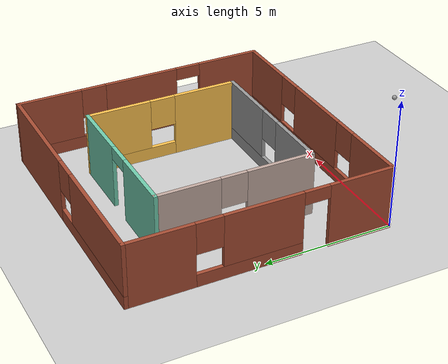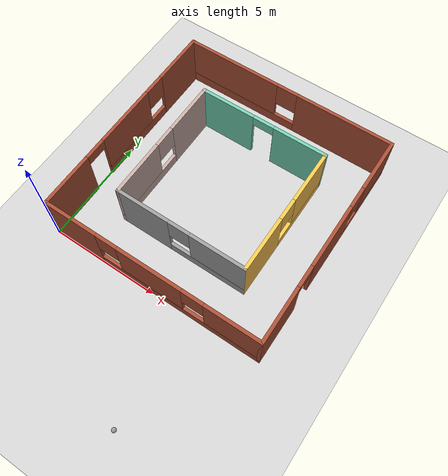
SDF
<sdf version="1.6">
 <world name="default">
  <plugin name="project_gazebo" filename="libproject_gazebo.so"/>
  <light name="sun" type="directional">
   <pose>0 0 10 0 -0 0</pose>
   <diffuse>0.8 0.8 0.8 1</diffuse>
   <specular>0.2 0.2 0.2 1</specular>
   <attenuation>
    <range>1000</range>
    <constant>0.9</constant>
    <linear>0.01</linear>
    <quadratic>0.001</quadratic>
   </attenuation>
   <direction>-0.5 0.1 -0.9</direction>
  </light>
  <model name="ground_plane">
   <static>1</static>
   <link name="link">
    <collision name="collision">
     <geometry><plane><normal>0 0 1</normal><size>100 100</size></plane></geometry>
     <surface>
      <contact><collide_bitmask>65535</collide_bitmask></contact>
      <friction><ode><mu>100</mu><mu2>50</mu2></ode></friction>
     </surface>
    </collision>
    <visual name="visual">
     <cast_shadows>0</cast_shadows>
     <geometry><plane><normal>0 0 1</normal><size>100 100</size></plane></geometry>
     <material>
      <script><uri>file://media/materials/scripts/gazebo.material</uri><name>Gazebo/Grey</name></script>
     </material>
    </visual>
   </link>
  </model>
  <gravity>0 0 -9.8</gravity>
  <magnetic_field>6e-06 2.3e-05 -4.2e-05</magnetic_field>
  <atmosphere type="adiabatic"/>
  <physics name="default_physics" default="0" type="ode">
   <max_step_size>0.001</max_step_size>
   <real_time_factor>1</real_time_factor>
   <real_time_update_rate>1000</real_time_update_rate>
  </physics>
  <scene><ambient>0.4 0.4 0.4 1</ambient><background>0.7 0.7 0.7 1</background><shadows>1</shadows></scene>
  <audio><device>default</device></audio>
  <spherical_coordinates>
   <surface_model>EARTH_WGS84</surface_model>
   <latitude_deg>0</latitude_deg>
   <longitude_deg>0</longitude_deg>
   <elevation>0</elevation>
   <heading_deg>0</heading_deg>
  </spherical_coordinates>
  <model name="project_gazebo_wall">
   <pose>4.98744 5.10563 0 0 -0 0</pose>
   <link name="Wall_1">
    <pose>5 -0 0 0 -0 1.5708</pose>
    <visual name="Wall_1_Visual_0">
     <pose>-3.7875 0 1.25 0 -0 0</pose>
     <geometry><box><size>2.575 0.15 2.5</size></box></geometry>
     <material>
      <script><uri>file://media/materials/scripts/gazebo.material</uri><name>Gazebo/Bricks</name></script>
      <ambient>1 1 1 1</ambient>
     </material>
     <meta><layer>0</layer></meta>
    </visual>
    <collision name="Wall_1_Collision_0">
     <geometry><box><size>2.575 0.15 2.5</size></box></geometry>
     <pose>-3.7875 0 1.25 0 -0 0</pose>
    </collision>
    <visual name="Wall_1_Visual_1">
     <pose>0 0 1.25 0 -0 0</pose>
     <geometry><box><size>3 0.15 2.5</size></box></geometry>
     <material>
      <script><uri>file://media/materials/scripts/gazebo.material</uri><name>Gazebo/Bricks</name></script>
      <ambient>1 1 1 1</ambient>
     </material>
     <meta><layer>0</layer></meta>
    </visual>
    <collision name="Wall_1_Collision_1">
     <geometry><box><size>3 0.15 2.5</size></box></geometry>
     <pose>0 0 1.25 0 -0 0</pose>
    </collision>
    <visual name="Wall_1_Visual_2">
     <pose>3.2875 0 0.25 0 -0 0</pose>
     <geometry><box><size>3.575 0.15 0.5</size></box></geometry>
     <material>
      <script><uri>file://media/materials/scripts/gazebo.material</uri><name>Gazebo/Bricks</name></script>
      <ambient>1 1 1 1</ambient>
     </material>
     <meta><layer>0</layer></meta>
    </visual>
    <collision name="Wall_1_Collision_2">
     <geometry><box><size>3.575 0.15 0.5</size></box></geometry>
     <pose>3.2875 0 0.25 0 -0 0</pose>
    </collision>
    <visual name="Wall_1_Visual_3">
     <pose>3.7875 0 1.5 0 -0 0</pose>
     <geometry><box><size>2.575 0.15 2</size></box></geometry>
     <material>
      <script><uri>file://media/materials/scripts/gazebo.material</uri><name>Gazebo/Bricks</name></script>
      <ambient>1 1 1 1</ambient>
     </material>
     <meta><layer>0</layer></meta>
    </visual>
    <collision name="Wall_1_Collision_3">
     <geometry><box><size>2.575 0.15 2</size></box></geometry>
     <pose>3.7875 0 1.5 0 -0 0</pose>
    </collision>
    <visual name="Wall_1_Visual_4">
     <pose>2 0 1.9 0 -0 0</pose>
     <geometry><box><size>1 0.15 1.2</size></box></geometry>
     <material>
      <script><uri>file://media/materials/scripts/gazebo.material</uri><name>Gazebo/Bricks</name></script>
      <ambient>1 1 1 1</ambient>
     </material>
     <meta><layer>0</layer></meta>
    </visual>
    <collision name="Wall_1_Collision_4">
     <geometry><box><size>1 0.15 1.2</size></box></geometry>
     <pose>2 0 1.9 0 -0 0</pose>
    </collision>
    <visual name="Wall_1_Visual_5">
     <pose>-2 0 2.25 0 -0 0</pose>
     <geometry><box><size>1 0.15 0.5</size></box></geometry>
     <material>
      <script><uri>file://media/materials/scripts/gazebo.material</uri><name>Gazebo/Bricks</name></script>
      <ambient>1 1 1 1</ambient>
     </material>
     <meta><layer>0</layer></meta>
    </visual>
    <collision name="Wall_1_Collision_5">
     <geometry><box><size>1 0.15 0.5</size></box></geometry>
     <pose>-2 0 2.25 0 -0 0</pose>
    </collision>
   </link>
   <link name="Wall_10">
    <pose>-0 -3 0 0 -0 0</pose>
    <visual name="Wall_10_Visual_0">
     <pose>-1.80742 0 1.25 0 -0 0</pose>
     <geometry><box><size>2.53517 0.15 2.5</size></box></geometry>
     <material>
      <script><uri>file://media/materials/scripts/gazebo.material</uri><name>Gazebo/Grey</name></script>
      <ambient>1 1 1 1</ambient>
     </material>
     <meta><layer>0</layer></meta>
    </visual>
    <collision name="Wall_10_Collision_0">
     <geometry><box><size>2.53517 0.15 2.5</size></box></geometry>
     <pose>-1.80742 0 1.25 0 -0 0</pose>
    </collision>
    <visual name="Wall_10_Visual_1">
     <pose>1.26758 0 0.25 0 -0 0</pose>
     <geometry><box><size>3.61483 0.15 0.5</size></box></geometry>
     <material>
      <script><uri>file://media/materials/scripts/gazebo.material</uri><name>Gazebo/Grey</name></script>
      <ambient>1 1 1 1</ambient>
     </material>
     <meta><layer>0</layer></meta>
    </visual>
    <collision name="Wall_10_Collision_1">
     <geometry><box><size>3.61483 0.15 0.5</size></box></geometry>
     <pose>1.26758 0 0.25 0 -0 0</pose>
    </collision>
    <visual name="Wall_10_Visual_2">
     <pose>1.76758 0 1.5 0 -0 0</pose>
     <geometry><box><size>2.61483 0.15 2</size></box></geometry>
     <material>
      <script><uri>file://media/materials/scripts/gazebo.material</uri><name>Gazebo/Grey</name></script>
      <ambient>1 1 1 1</ambient>
     </material>
     <meta><layer>0</layer></meta>
    </visual>
    <collision name="Wall_10_Collision_2">
     <geometry><box><size>2.61483 0.15 2</size></box></geometry>
     <pose>1.76758 0 1.5 0 -0 0</pose>
    </collision>
    <visual name="Wall_10_Visual_3">
     <pose>-0.039832 0 1.9 0 -0 0</pose>
     <geometry><box><size>1 0.15 1.2</size></box></geometry>
     <material>
      <script><uri>file://media/materials/scripts/gazebo.material</uri><name>Gazebo/Grey</name></script>
      <ambient>1 1 1 1</ambient>
     </material>
     <meta><layer>0</layer></meta>
    </visual>
    <collision name="Wall_10_Collision_3">
     <geometry><box><size>1 0.15 1.2</size></box></geometry>
     <pose>-0.039832 0 1.9 0 -0 0</pose>
    </collision>
   </link>
   <link name="Wall_11">
    <pose>3 -0 0 0 -0 1.5708</pose>
    <visual name="Wall_11_Visual_0">
     <pose>-1.78192 0 1.25 0 -0 0</pose>
     <geometry><box><size>2.58615 0.15 2.5</size></box></geometry>
     <material>
      <script><uri>file://media/materials/scripts/gazebo.material</uri><name>Gazebo/Grey</name></script>
      <ambient>1 0.764706 0.305882 1</ambient>
     </material>
     <meta><layer>0</layer></meta>
    </visual>
    <collision name="Wall_11_Collision_0">
     <geometry><box><size>2.58615 0.15 2.5</size></box></geometry>
     <pose>-1.78192 0 1.25 0 -0 0</pose>
    </collision>
    <visual name="Wall_11_Visual_1">
     <pose>1.29308 0 0.25 0 -0 0</pose>
     <geometry><box><size>3.56385 0.15 0.5</size></box></geometry>
     <material>
      <script><uri>file://media/materials/scripts/gazebo.material</uri><name>Gazebo/Grey</name></script>
      <ambient>1 0.764706 0.305882 1</ambient>
     </material>
     <meta><layer>0</layer></meta>
    </visual>
    <collision name="Wall_11_Collision_1">
     <geometry><box><size>3.56385 0.15 0.5</size></box></geometry>
     <pose>1.29308 0 0.25 0 -0 0</pose>
    </collision>
    <visual name="Wall_11_Visual_2">
     <pose>1.79308 0 1.5 0 -0 0</pose>
     <geometry><box><size>2.56385 0.15 2</size></box></geometry>
     <material>
      <script><uri>file://media/materials/scripts/gazebo.material</uri><name>Gazebo/Grey</name></script>
      <ambient>1 0.764706 0.305882 1</ambient>
     </material>
     <meta><layer>0</layer></meta>
    </visual>
    <collision name="Wall_11_Collision_2">
     <geometry><box><size>2.56385 0.15 2</size></box></geometry>
     <pose>1.79308 0 1.5 0 -0 0</pose>
    </collision>
    <visual name="Wall_11_Visual_3">
     <pose>0.011152 0 1.9 0 -0 0</pose>
     <geometry><box><size>1 0.15 1.2</size></box></geometry>
     <material>
      <script><uri>file://media/materials/scripts/gazebo.material</uri><name>Gazebo/Grey</name></script>
      <ambient>1 0.764706 0.305882 1</ambient>
     </material>
     <meta><layer>0</layer></meta>
    </visual>
    <collision name="Wall_11_Collision_3">
     <geometry><box><size>1 0.15 1.2</size></box></geometry>
     <pose>0.011152 0 1.9 0 -0 0</pose>
    </collision>
   </link>
   <link name="Wall_12">
    <pose>-0 3 0 0 -0 3.14159</pose>
    <visual name="Wall_12_Visual_0">
     <pose>-1.80804 0 1.25 0 -0 0</pose>
     <geometry><box><size>2.53392 0.15 2.5</size></box></geometry>
     <material>
      <script><uri>file://media/materials/scripts/gazebo.material</uri><name>Gazebo/Grey</name></script>
      <ambient>0.435294 0.796078 0.67451 1</ambient>
     </material>
     <meta><layer>0</layer></meta>
    </visual>
    <collision name="Wall_12_Collision_0">
     <geometry><box><size>2.53392 0.15 2.5</size></box></geometry>
     <pose>-1.80804 0 1.25 0 -0 0</pose>
    </collision>
    <visual name="Wall_12_Visual_1">
     <pose>1.76696 0 1.25 0 -0 0</pose>
     <geometry><box><size>2.61608 0.15 2.5</size></box></geometry>
     <material>
      <script><uri>file://media/materials/scripts/gazebo.material</uri><name>Gazebo/Grey</name></script>
      <ambient>0.435294 0.796078 0.67451 1</ambient>
     </material>
     <meta><layer>0</layer></meta>
    </visual>
    <collision name="Wall_12_Collision_1">
     <geometry><box><size>2.61608 0.15 2.5</size></box></geometry>
     <pose>1.76696 0 1.25 0 -0 0</pose>
    </collision>
    <visual name="Wall_12_Visual_2">
     <pose>-0.041079 0 2.25 0 -0 0</pose>
     <geometry><box><size>1 0.15 0.5</size></box></geometry>
     <material>
      <script><uri>file://media/materials/scripts/gazebo.material</uri><name>Gazebo/Grey</name></script>
      <ambient>0.435294 0.796078 0.67451 1</ambient>
     </material>
     <meta><layer>0</layer></meta>
    </visual>
    <collision name="Wall_12_Collision_2">
     <geometry><box><size>1 0.15 0.5</size></box></geometry>
     <pose>-0.041079 0 2.25 0 -0 0</pose>
    </collision>
   </link>
   <link name="Wall_2">
    <pose>-0 5 0 0 -0 3.14159</pose>
    <visual name="Wall_2_Visual_0">
     <pose>-2.7875 0 1.25 0 -0 0</pose>
     <geometry><box><size>4.575 0.15 2.5</size></box></geometry>
     <material>
      <script><uri>file://media/materials/scripts/gazebo.material</uri><name>Gazebo/Bricks</name></script>
      <ambient>1 1 1 1</ambient>
     </material>
     <meta><layer>0</layer></meta>
    </visual>
    <collision name="Wall_2_Collision_0">
     <geometry><box><size>4.575 0.15 2.5</size></box></geometry>
     <pose>-2.7875 0 1.25 0 -0 0</pose>
    </collision>
    <visual name="Wall_2_Visual_1">
     <pose>2.2875 0 0.25 0 -0 0</pose>
     <geometry><box><size>5.575 0.15 0.5</size></box></geometry>
     <material>
      <script><uri>file://media/materials/scripts/gazebo.material</uri><name>Gazebo/Bricks</name></script>
      <ambient>1 1 1 1</ambient>
     </material>
     <meta><layer>0</layer></meta>
    </visual>
    <collision name="Wall_2_Collision_1">
     <geometry><box><size>5.575 0.15 0.5</size></box></geometry>
     <pose>2.2875 0 0.25 0 -0 0</pose>
    </collision>
    <visual name="Wall_2_Visual_2">
     <pose>2.7875 0 1.5 0 -0 0</pose>
     <geometry><box><size>4.575 0.15 2</size></box></geometry>
     <material>
      <script><uri>file://media/materials/scripts/gazebo.material</uri><name>Gazebo/Bricks</name></script>
      <ambient>1 1 1 1</ambient>
     </material>
     <meta><layer>0</layer></meta>
    </visual>
    <collision name="Wall_2_Collision_2">
     <geometry><box><size>4.575 0.15 2</size></box></geometry>
     <pose>2.7875 0 1.5 0 -0 0</pose>
    </collision>
    <visual name="Wall_2_Visual_3">
     <pose>0 0 1.9 0 -0 0</pose>
     <geometry><box><size>1 0.15 1.2</size></box></geometry>
     <material>
      <script><uri>file://media/materials/scripts/gazebo.material</uri><name>Gazebo/Bricks</name></script>
      <ambient>1 1 1 1</ambient>
     </material>
     <meta><layer>0</layer></meta>
    </visual>
    <collision name="Wall_2_Collision_3">
     <geometry><box><size>1 0.15 1.2</size></box></geometry>
     <pose>0 0 1.9 0 -0 0</pose>
    </collision>
   </link>
   <link name="Wall_6">
    <pose>-5 -0 0 0 -0 -1.5708</pose>
    <visual name="Wall_6_Visual_0">
     <pose>-3.7875 0 1.25 0 -0 0</pose>
     <geometry><box><size>2.575 0.15 2.5</size></box></geometry>
     <material>
      <script><uri>file://media/materials/scripts/gazebo.material</uri><name>Gazebo/Bricks</name></script>
      <ambient>1 1 1 1</ambient>
     </material>
     <meta><layer>0</layer></meta>
    </visual>
    <collision name="Wall_6_Collision_0">
     <geometry><box><size>2.575 0.15 2.5</size></box></geometry>
     <pose>-3.7875 0 1.25 0 -0 0</pose>
    </collision>
    <visual name="Wall_6_Visual_1">
     <pose>3.7875 0 1.25 0 -0 0</pose>
     <geometry><box><size>2.575 0.15 2.5</size></box></geometry>
     <material>
      <script><uri>file://media/materials/scripts/gazebo.material</uri><name>Gazebo/Bricks</name></script>
      <ambient>1 1 1 1</ambient>
     </material>
     <meta><layer>0</layer></meta>
    </visual>
    <collision name="Wall_6_Collision_1">
     <geometry><box><size>2.575 0.15 2.5</size></box></geometry>
     <pose>3.7875 0 1.25 0 -0 0</pose>
    </collision>
    <visual name="Wall_6_Visual_2">
     <pose>-0.5 0 0.25 0 -0 0</pose>
     <geometry><box><size>4 0.15 0.5</size></box></geometry>
     <material>
      <script><uri>file://media/materials/scripts/gazebo.material</uri><name>Gazebo/Bricks</name></script>
      <ambient>1 1 1 1</ambient>
     </material>
     <meta><layer>0</layer></meta>
    </visual>
    <collision name="Wall_6_Collision_2">
     <geometry><box><size>4 0.15 0.5</size></box></geometry>
     <pose>-0.5 0 0.25 0 -0 0</pose>
    </collision>
    <visual name="Wall_6_Visual_3">
     <pose>0 0 1.5 0 -0 0</pose>
     <geometry><box><size>3 0.15 2</size></box></geometry>
     <material>
      <script><uri>file://media/materials/scripts/gazebo.material</uri><name>Gazebo/Bricks</name></script>
      <ambient>1 1 1 1</ambient>
     </material>
     <meta><layer>0</layer></meta>
    </visual>
    <collision name="Wall_6_Collision_3">
     <geometry><box><size>3 0.15 2</size></box></geometry>
     <pose>0 0 1.5 0 -0 0</pose>
    </collision>
    <visual name="Wall_6_Visual_4">
     <pose>-2 0 1.9 0 -0 0</pose>
     <geometry><box><size>1 0.15 1.2</size></box></geometry>
     <material>
      <script><uri>file://media/materials/scripts/gazebo.material</uri><name>Gazebo/Bricks</name></script>
      <ambient>1 1 1 1</ambient>
     </material>
     <meta><layer>0</layer></meta>
    </visual>
    <collision name="Wall_6_Collision_4">
     <geometry><box><size>1 0.15 1.2</size></box></geometry>
     <pose>-2 0 1.9 0 -0 0</pose>
    </collision>
    <visual name="Wall_6_Visual_5">
     <pose>2 0 2.25 0 -0 0</pose>
     <geometry><box><size>1 0.15 0.5</size></box></geometry>
     <material>
      <script><uri>file://media/materials/scripts/gazebo.material</uri><name>Gazebo/Bricks</name></script>
      <ambient>1 1 1 1</ambient>
     </material>
     <meta><layer>0</layer></meta>
    </visual>
    <collision name="Wall_6_Collision_5">
     <geometry><box><size>1 0.15 0.5</size></box></geometry>
     <pose>2 0 2.25 0 -0 0</pose>
    </collision>
   </link>
   <link name="Wall_7">
    <pose>-0 -5 0 0 -0 0</pose>
    <visual name="Wall_7_Visual_0">
     <pose>-3.7875 0 1.25 0 -0 0</pose>
     <geometry><box><size>2.575 0.15 2.5</size></box></geometry>
     <material>
      <script><uri>file://media/materials/scripts/gazebo.material</uri><name>Gazebo/Bricks</name></script>
      <ambient>1 1 1 1</ambient>
     </material>
     <meta><layer>0</layer></meta>
    </visual>
    <collision name="Wall_7_Collision_0">
     <geometry><box><size>2.575 0.15 2.5</size></box></geometry>
     <pose>-3.7875 0 1.25 0 -0 0</pose>
    </collision>
    <visual name="Wall_7_Visual_1">
     <pose>1.2875 0 0.25 0 -0 0</pose>
     <geometry><box><size>7.575 0.15 0.5</size></box></geometry>
     <material>
      <script><uri>file://media/materials/scripts/gazebo.material</uri><name>Gazebo/Bricks</name></script>
      <ambient>1 1 1 1</ambient>
     </material>
     <meta><layer>0</layer></meta>
    </visual>
    <collision name="Wall_7_Collision_1">
     <geometry><box><size>7.575 0.15 0.5</size></box></geometry>
     <pose>1.2875 0 0.25 0 -0 0</pose>
    </collision>
    <visual name="Wall_7_Visual_2">
     <pose>0 0 1.5 0 -0 0</pose>
     <geometry><box><size>3 0.15 2</size></box></geometry>
     <material>
      <script><uri>file://media/materials/scripts/gazebo.material</uri><name>Gazebo/Bricks</name></script>
      <ambient>1 1 1 1</ambient>
     </material>
     <meta><layer>0</layer></meta>
    </visual>
    <collision name="Wall_7_Collision_2">
     <geometry><box><size>3 0.15 2</size></box></geometry>
     <pose>0 0 1.5 0 -0 0</pose>
    </collision>
    <visual name="Wall_7_Visual_3">
     <pose>3.7875 0 1.5 0 -0 0</pose>
     <geometry><box><size>2.575 0.15 2</size></box></geometry>
     <material>
      <script><uri>file://media/materials/scripts/gazebo.material</uri><name>Gazebo/Bricks</name></script>
      <ambient>1 1 1 1</ambient>
     </material>
     <meta><layer>0</layer></meta>
    </visual>
    <collision name="Wall_7_Collision_3">
     <geometry><box><size>2.575 0.15 2</size></box></geometry>
     <pose>3.7875 0 1.5 0 -0 0</pose>
    </collision>
    <visual name="Wall_7_Visual_4">
     <pose>-2 0 1.9 0 -0 0</pose>
     <geometry><box><size>1 0.15 1.2</size></box></geometry>
     <material>
      <script><uri>file://media/materials/scripts/gazebo.material</uri><name>Gazebo/Bricks</name></script>
      <ambient>1 1 1 1</ambient>
     </material>
     <meta><layer>0</layer></meta>
    </visual>
    <collision name="Wall_7_Collision_4">
     <geometry><box><size>1 0.15 1.2</size></box></geometry>
     <pose>-2 0 1.9 0 -0 0</pose>
    </collision>
    <visual name="Wall_7_Visual_5">
     <pose>2 0 1.9 0 -0 0</pose>
     <geometry><box><size>1 0.15 1.2</size></box></geometry>
     <material>
      <script><uri>file://media/materials/scripts/gazebo.material</uri><name>Gazebo/Bricks</name></script>
      <ambient>1 1 1 1</ambient>
     </material>
     <meta><layer>0</layer></meta>
    </visual>
    <collision name="Wall_7_Collision_5">
     <geometry><box><size>1 0.15 1.2</size></box></geometry>
     <pose>2 0 1.9 0 -0 0</pose>
    </collision>
   </link>
   <link name="Wall_9">
    <pose>-3 -0 0 0 -0 -1.5708</pose>
    <visual name="Wall_9_Visual_0">
     <pose>-1.82342 0 1.25 0 -0 0</pose>
     <geometry><box><size>2.50316 0.15 2.5</size></box></geometry>
     <material>
      <script><uri>file://media/materials/scripts/gazebo.material</uri><name>Gazebo/Grey</name></script>
      <ambient>0.760784 0.662745 0.627451 1</ambient>
     </material>
     <meta><layer>0</layer></meta>
    </visual>
    <collision name="Wall_9_Collision_0">
     <geometry><box><size>2.50316 0.15 2.5</size></box></geometry>
     <pose>-1.82342 0 1.25 0 -0 0</pose>
    </collision>
    <visual name="Wall_9_Visual_1">
     <pose>1.25158 0 0.25 0 -0 0</pose>
     <geometry><box><size>3.64684 0.15 0.5</size></box></geometry>
     <material>
      <script><uri>file://media/materials/scripts/gazebo.material</uri><name>Gazebo/Grey</name></script>
      <ambient>0.760784 0.662745 0.627451 1</ambient>
     </material>
     <meta><layer>0</layer></meta>
    </visual>
    <collision name="Wall_9_Collision_1">
     <geometry><box><size>3.64684 0.15 0.5</size></box></geometry>
     <pose>1.25158 0 0.25 0 -0 0</pose>
    </collision>
    <visual name="Wall_9_Visual_2">
     <pose>1.75158 0 1.5 0 -0 0</pose>
     <geometry><box><size>2.64684 0.15 2</size></box></geometry>
     <material>
      <script><uri>file://media/materials/scripts/gazebo.material</uri><name>Gazebo/Grey</name></script>
      <ambient>0.760784 0.662745 0.627451 1</ambient>
     </material>
     <meta><layer>0</layer></meta>
    </visual>
    <collision name="Wall_9_Collision_2">
     <geometry><box><size>2.64684 0.15 2</size></box></geometry>
     <pose>1.75158 0 1.5 0 -0 0</pose>
    </collision>
    <visual name="Wall_9_Visual_3">
     <pose>-0.071836 0 1.9 0 -0 0</pose>
     <geometry><box><size>1 0.15 1.2</size></box></geometry>
     <material>
      <script><uri>file://media/materials/scripts/gazebo.material</uri><name>Gazebo/Grey</name></script>
      <ambient>0.760784 0.662745 0.627451 1</ambient>
     </material>
     <meta><layer>0</layer></meta>
    </visual>
    <collision name="Wall_9_Collision_3">
     <geometry><box><size>1 0.15 1.2</size></box></geometry>
     <pose>-0.071836 0 1.9 0 -0 0</pose>
    </collision>
   </link>
   <static>1</static>
  </model>
  <model name="model_white_ball">
   <link name="link_0">
    <inertial>
     <mass>1</mass>
     <inertia><ixx>0.1</ixx><ixy>0</ixy><ixz>0</ixz><iyy>0.1</iyy><iyz>0</iyz><izz>0.1</izz></inertia>
    </inertial>
    <visual name="visual">
     <geometry><sphere><radius>0.1</radius></sphere></geometry>
     <material>
      <lighting>1</lighting>
      <script><uri>file://media/materials/scripts/gazebo.material</uri><name>Gazebo/Grey</name></script>
      <ambient>1 1 1 1</ambient>
      <shader type="vertex"><normal_map>__default__</normal_map></shader>
      <diffuse>1 1 1 1</diffuse>
      <specular>1 1 1 1</specular>
      <emissive>1 1 1 1</emissive>
     </material>
    </visual>
    <collision name="collision">
     <geometry><sphere><radius>0.1</radius></sphere></geometry>
     <surface>
      <friction>
       <ode><mu>1</mu><mu2>1</mu2><fdir1>0 0 0</fdir1><slip1>0</slip1><slip2>0</slip2></ode>
       <torsional>
        <coefficient>1</coefficient>
        <patch_radius>0</patch_radius>
        <surface_radius>0</surface_radius>
        <use_patch_radius>1</use_patch_radius>
        <ode><slip>0</slip></ode>
       </torsional>
      </friction>
      <bounce><restitution_coefficient>0</restitution_coefficient><threshold>1e+06</threshold></bounce>
      <contact>
       <collide_without_contact>0</collide_without_contact>
       <collide_without_contact_bitmask>1</collide_without_contact_bitmask>
       <collide_bitmask>1</collide_bitmask>
       <ode>
        <soft_cfm>0</soft_cfm>
        <soft_erp>0.2</soft_erp>
        <kp>1e+13</kp>
        <kd>1</kd>
        <max_vel>0.01</max_vel>
        <min_depth>0</min_depth>
       </ode>
       <bullet>
        <split_impulse>1</split_impulse>
        <split_impulse_penetration_threshold>-0.01</split_impulse_penetration_threshold>
        <soft_cfm>0</soft_cfm>
        <soft_erp>0.2</soft_erp>
        <kp>1e+13</kp>
        <kd>1</kd>
       </bullet>
      </contact>
     </surface>
    </collision>
   </link>
   <static>0</static>
   <pose>7.07874 -5.0054 0.5 0 -0 0</pose>
  </model>
 </world>
</sdf>
